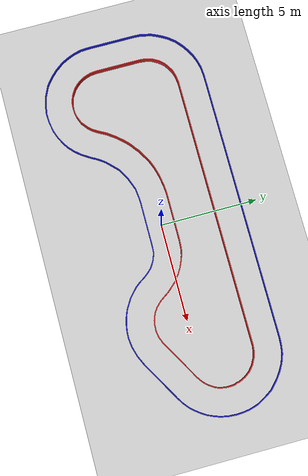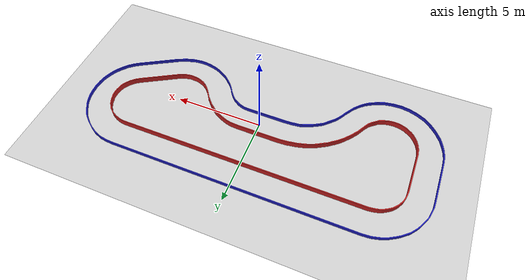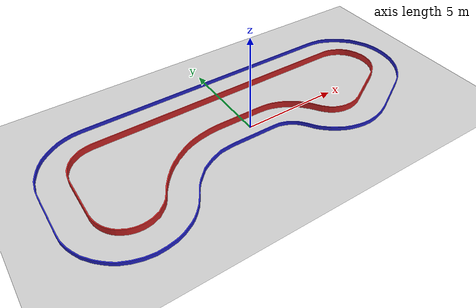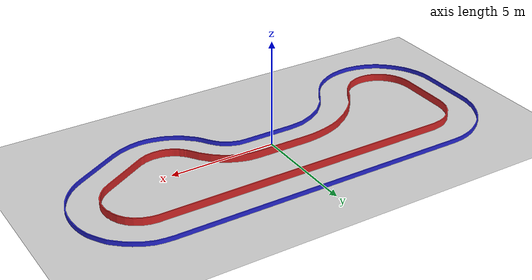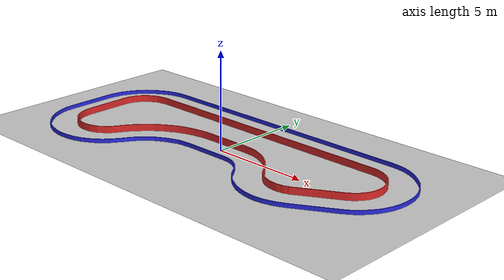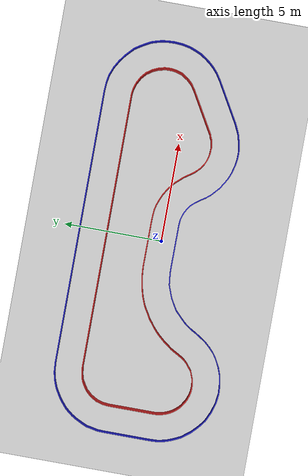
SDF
<?xml version="1.0"?>
<sdf version='1.8'>
  <world name='custom_track_lidar'>

    <physics name='1ms' type='ignored'>
      <max_step_size>0.003</max_step_size>
      <real_time_factor>1</real_time_factor>
      <real_time_update_rate>1000</real_time_update_rate>
    </physics>

    <plugin name='ignition::gazebo::systems::Physics'
            filename='ignition-gazebo-physics-system'/>
    <plugin name='ignition::gazebo::systems::UserCommands'
            filename='ignition-gazebo-user-commands-system'/>
    <plugin name='ignition::gazebo::systems::SceneBroadcaster'
            filename='ignition-gazebo-scene-broadcaster-system'/>
    <plugin name='ignition::gazebo::systems::Contact'
            filename='ignition-gazebo-contact-system'/>
    <plugin name='ignition::gazebo::systems::Sensors'
            filename='ignition-gazebo-sensors-system'>
      <render_engine>ogre2</render_engine>
    </plugin>

    <light name='sun' type='directional'>
      <cast_shadows>1</cast_shadows>
      <pose>0 0 10 0 -0 0</pose>
      <diffuse>0.8 0.8 0.8 1</diffuse>
      <specular>0.2 0.2 0.2 1</specular>
      <attenuation>
        <range>1000</range>
        <constant>0.9</constant>
        <linear>0.01</linear>
        <quadratic>0.001</quadratic>
      </attenuation>
      <direction>-0.5 0.1 -0.9</direction>
      <spot>
        <inner_angle>0</inner_angle>
        <outer_angle>0</outer_angle>
        <falloff>0</falloff>
      </spot>
    </light>

    <gravity>0 0 -9.8</gravity>
    <magnetic_field>6e-06 2.3e-05 -4.2e-05</magnetic_field>
    <atmosphere type='adiabatic'/>

    <scene>
      <ambient>0.4 0.4 0.4 1</ambient>
      <background>0.7 0.7 0.7 1</background>
      <shadows>1</shadows>
    </scene>

    <model name='ground_plane'>
      <static>1</static>
      <link name='link'>
        <collision name='collision'>
          <geometry>
            <plane>
              <normal>0 0 1</normal>
              <size>100 100</size>
            </plane>
          </geometry>
          <surface>
            <friction><ode/></friction>
            <bounce/>
            <contact/>
          </surface>
        </collision>
        <visual name='visual'>
          <geometry>
            <plane>
              <normal>0 0 1</normal>
              <size>100 100</size>
            </plane>
          </geometry>
          <material>
            <ambient>0.8 0.8 0.8 1</ambient>
            <diffuse>0.8 0.8 0.8 1</diffuse>
          </material>
        </visual>
      </link>
    </model>

  <model name="wall_0">
    <static>true</static>
    <pose>0 0 0 0 0 0</pose>
    <link name="link">
      <collision name="col">
        <geometry>
          <mesh>
            <uri>file:///home/shrinkraln/codes/gazebo_models/world5/meshes/track_outer.dae</uri>
            <scale>1 1 1</scale>
          </mesh>
        </geometry>
        <surface>
          <contact><ode><kp>1e6</kp><kd>1</kd></ode></contact>
          <friction><ode><mu>100</mu><mu2>50</mu2></ode></friction>
        </surface>
      </collision>
      <visual name="vis">
        <geometry>
          <mesh><uri>file:///home/shrinkraln/codes/gazebo_models/world5/meshes/track_outer.dae</uri><scale>1 1 1</scale></mesh>
        </geometry>
        <material>
          <ambient>0.85 0.15 0.15 1</ambient><diffuse>0.85 0.15 0.15 1</diffuse>
        </material>
      </visual>
    </link>
  </model>
  <model name="wall_1">
    <static>true</static>
    <pose>0 0 0 0 0 0</pose>
    <link name="link">
      <collision name="col">
        <geometry>
          <mesh>
            <uri>file:///home/shrinkraln/codes/gazebo_models/world5/meshes/track_inner.dae</uri>
            <scale>1 1 1</scale>
          </mesh>
        </geometry>
        <surface>
          <contact><ode><kp>1e6</kp><kd>1</kd></ode></contact>
          <friction><ode><mu>100</mu><mu2>50</mu2></ode></friction>
        </surface>
      </collision>
      <visual name="vis">
        <geometry>
          <mesh><uri>file:///home/shrinkraln/codes/gazebo_models/world5/meshes/track_inner.dae</uri><scale>1 1 1</scale></mesh>
        </geometry>
        <material>
          <ambient>0.15 0.15 0.85 1</ambient><diffuse>0.15 0.15 0.85 1</diffuse>
        </material>
      </visual>
    </link>
  </model>

  </world>
</sdf>
